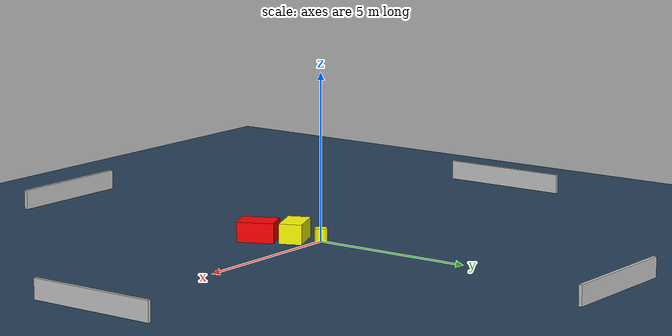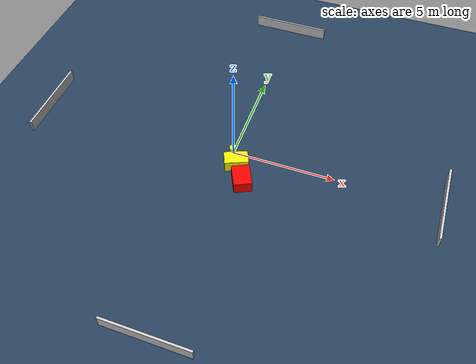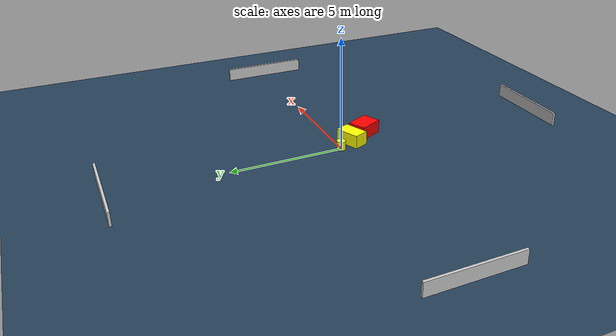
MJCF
<?xml version="1.0" ?>
<mujoco model="generated_environment">
  <option timestep="0.01" integrator="RK4" cone="elliptic"/>
  <default>
    <geom density="1"/>
  </default>
  <asset>
    <texture builtin="gradient" height="3072" name="skybox" rgb1="0.3 0.5 0.7" rgb2="0 0 0" type="skybox" width="512"/>
    <texture builtin="checker" height="300" name="groundplane" rgb1="0.2 0.3 0.4" rgb2="0.1 0.2 0.3" type="2d" width="300"/>
    <material name="groundplane" reflectance="0.2" texrepeat="5 5" texture="groundplane"/>
  </asset>
  <worldbody>
    <light dir="0 0 -1" directional="true" pos="0 0 1.5"/>
    <geom condim="3" friction="0.5 0.005 0.001" material="groundplane" name="floor" pos="0 0 0" size="0 0 0.05" type="plane"/>
    <body name="walls">
      <geom name="wall_1" condim="4" pos="-10.0 0.0 0.3" rgba="0.800000011920929 0.800000011920929 0.800000011920929 1.0" size="0.05 2.0 0.3" type="box"/>
      <geom name="wall_2" condim="4" pos="10.0 0.0 0.3" rgba="0.800000011920929 0.800000011920929 0.800000011920929 1.0" size="0.05 2.0 0.3" type="box"/>
      <geom name="wall_3" condim="4" pos="0.0 -10.0 0.3" rgba="0.800000011920929 0.800000011920929 0.800000011920929 1.0" size="2.0 0.05 0.3" type="box"/>
      <geom name="wall_4" condim="4" pos="0.0 10.0 0.3" rgba="0.800000011920929 0.800000011920929 0.800000011920929 1.0" size="2.0 0.05 0.3" type="box"/>
    </body>
    <body name="robot">
      <joint name="joint_x" type="slide" pos="0 0 0" axis="1 0 0"/>
      <joint name="joint_y" type="slide" pos="0 0 0" axis="0 1 0"/>
      <geom name="robot" type="cylinder" pos="0.0 0.0 0.2" size="0.2 0.2 0.0" mass="5.0" friction="1.0 0.005 0.0001" condim="4" rgba="1.0 1.0 0.0 1.0"/>
    </body>
    <body name="obstacle_1_movable">
      <geom name="obstacle_1_movable" condim="4" pos="0.37186123296993623 -0.6811419893155964 0.3" euler="0 0 203.3031989664997" friction="0.0 0.005 0.001" rgba="1.0 1.0 0.0 1.0" size="0.5697464233277826 0.3402083766743639 0.3" type="box" mass="0.1"/>
      <joint type="free"/>
    </body>
    <body name="obstacle_2_static">
      <geom name="obstacle_2_static" condim="4" pos="0.9609685598562896 -1.5922945710088872 0.3" euler="0 0 205.51634020205978" friction="0.0 0.005 0.001" rgba="1.0 0.0 0.0 1.0" size="0.4260447276828841 0.556402565351305 0.3" type="box"/>
    </body>
  </worldbody>
  <actuator>
    <motor name="actuator_x" joint="joint_x" gear="1" ctrlrange="-1 1"/>
    <motor name="actuator_y" joint="joint_y" gear="1" ctrlrange="-1 1"/>
  </actuator>
</mujoco>
